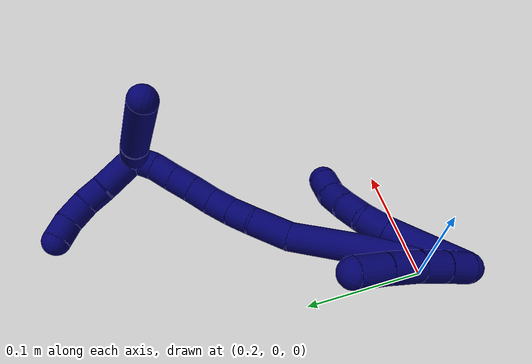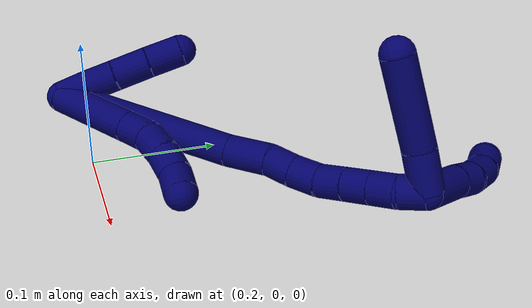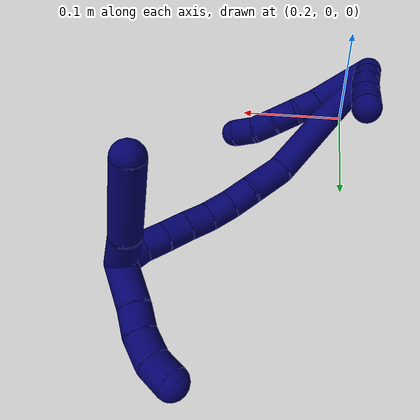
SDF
<sdf version="1.7">
 <world name="default">
  <model name="7">
   <static>0</static>
   <link name="7">
    <collision name="collision-cylinder-e_1_2_8">
     <pose>0.018057 0.007143 0.027216 -0.256673 0.570535 -0.075653</pose>
     <geometry><cylinder><radius>0.0125</radius><length>0.066867</length></cylinder></geometry>
     <surface>
      <friction><ode><mu>1.16</mu><mu2>1.16</mu2><slip1>0</slip1><slip2>0</slip2></ode></friction>
      <contact><ode><kp>1e+06</kp><kd>1</kd><max_vel>0</max_vel><min_depth>0.001</min_depth></ode></contact>
     </surface>
    </collision>
    <visual name="visual-cylinder-e_1_2_8">
     <pose>0.018057 0.007143 0.027216 -0.256673 0.570535 -0.075653</pose>
     <geometry><cylinder><radius>0.0125</radius><length>0.066867</length></cylinder></geometry>
     <material><ambient>0.003922 0 0.403922 1</ambient></material>
    </visual>
    <collision name="collision-cylinder-e_2_8_9">
     <pose>0.042424 0.015677 0.063169 -0.157828 0.61958 -0.050614</pose>
     <geometry><cylinder><radius>0.0125</radius><length>0.021734</length></cylinder></geometry>
     <surface>
      <friction><ode><mu>1.16</mu><mu2>1.16</mu2><slip1>0</slip1><slip2>0</slip2></ode></friction>
      <contact><ode><kp>1e+06</kp><kd>1</kd><max_vel>0</max_vel><min_depth>0.001</min_depth></ode></contact>
     </surface>
    </collision>
    <visual name="visual-cylinder-e_2_8_9">
     <pose>0.042424 0.015677 0.063169 -0.157828 0.61958 -0.050614</pose>
     <geometry><cylinder><radius>0.0125</radius><length>0.021734</length></cylinder></geometry>
     <material><ambient>0.003922 0 0.403922 1</ambient></material>
    </visual>
    <collision name="collision-cylinder-e_3_9_10">
     <pose>0.057224 0.019256 0.077908 -0.349737 0.925735 -0.175874</pose>
     <geometry><cylinder><radius>0.0125</radius><length>0.02125</length></cylinder></geometry>
     <surface>
      <friction><ode><mu>1.16</mu><mu2>1.16</mu2><slip1>0</slip1><slip2>0</slip2></ode></friction>
      <contact><ode><kp>1e+06</kp><kd>1</kd><max_vel>0</max_vel><min_depth>0.001</min_depth></ode></contact>
     </surface>
    </collision>
    <visual name="visual-cylinder-e_3_9_10">
     <pose>0.057224 0.019256 0.077908 -0.349737 0.925735 -0.175874</pose>
     <geometry><cylinder><radius>0.0125</radius><length>0.02125</length></cylinder></geometry>
     <material><ambient>0.003922 0 0.403922 1</ambient></material>
    </visual>
    <collision name="collision-cylinder-e_4_10_11">
     <pose>0.074486 0.023687 0.08821 -0.480407 1.06569 -0.286911</pose>
     <geometry><cylinder><radius>0.0125</radius><length>0.020047</length></cylinder></geometry>
     <surface>
      <friction><ode><mu>1.16</mu><mu2>1.16</mu2><slip1>0</slip1><slip2>0</slip2></ode></friction>
      <contact><ode><kp>1e+06</kp><kd>1</kd><max_vel>0</max_vel><min_depth>0.001</min_depth></ode></contact>
     </surface>
    </collision>
    <visual name="visual-cylinder-e_4_10_11">
     <pose>0.074486 0.023687 0.08821 -0.480407 1.06569 -0.286911</pose>
     <geometry><cylinder><radius>0.0125</radius><length>0.020047</length></cylinder></geometry>
     <material><ambient>0.003922 0 0.403922 1</ambient></material>
    </visual>
    <collision name="collision-cylinder-e_5_11_6">
     <pose>0.092842 0.025968 0.095538 -0.013238 1.26492 -0.009702</pose>
     <geometry><cylinder><radius>0.0125</radius><length>0.020103</length></cylinder></geometry>
     <surface>
      <friction><ode><mu>1.16</mu><mu2>1.16</mu2><slip1>0</slip1><slip2>0</slip2></ode></friction>
      <contact><ode><kp>1e+06</kp><kd>1</kd><max_vel>0</max_vel><min_depth>0.001</min_depth></ode></contact>
     </surface>
    </collision>
    <visual name="visual-cylinder-e_5_11_6">
     <pose>0.092842 0.025968 0.095538 -0.013238 1.26492 -0.009702</pose>
     <geometry><cylinder><radius>0.0125</radius><length>0.020103</length></cylinder></geometry>
     <material><ambient>0.003922 0 0.403922 1</ambient></material>
    </visual>
    <collision name="collision-cylinder-e_1_2_12">
     <pose>-0.003166 0.000608 0.010644 -0.057105 -0.288656 0.008302</pose>
     <geometry><cylinder><radius>0.0125</radius><length>0.022243</length></cylinder></geometry>
     <surface>
      <friction><ode><mu>1.16</mu><mu2>1.16</mu2><slip1>0</slip1><slip2>0</slip2></ode></friction>
      <contact><ode><kp>1e+06</kp><kd>1</kd><max_vel>0</max_vel><min_depth>0.001</min_depth></ode></contact>
     </surface>
    </collision>
    <visual name="visual-cylinder-e_1_2_12">
     <pose>-0.003166 0.000608 0.010644 -0.057105 -0.288656 0.008302</pose>
     <geometry><cylinder><radius>0.0125</radius><length>0.022243</length></cylinder></geometry>
     <material><ambient>0.003922 0 0.403922 1</ambient></material>
    </visual>
    <collision name="collision-cylinder-e_2_12_13">
     <pose>-0.009444 0.002336 0.032104 -0.10313 -0.278787 0.014482</pose>
     <geometry><cylinder><radius>0.0125</radius><length>0.02262</length></cylinder></geometry>
     <surface>
      <friction><ode><mu>1.16</mu><mu2>1.16</mu2><slip1>0</slip1><slip2>0</slip2></ode></friction>
      <contact><ode><kp>1e+06</kp><kd>1</kd><max_vel>0</max_vel><min_depth>0.001</min_depth></ode></contact>
     </surface>
    </collision>
    <visual name="visual-cylinder-e_2_12_13">
     <pose>-0.009444 0.002336 0.032104 -0.10313 -0.278787 0.014482</pose>
     <geometry><cylinder><radius>0.0125</radius><length>0.02262</length></cylinder></geometry>
     <material><ambient>0.003922 0 0.403922 1</ambient></material>
    </visual>
    <collision name="collision-cylinder-e_3_13_14">
     <pose>-0.017164 0.005356 0.056018 -0.144099 -0.334963 0.024403</pose>
     <geometry><cylinder><radius>0.0125</radius><length>0.028028</length></cylinder></geometry>
     <surface>
      <friction><ode><mu>1.16</mu><mu2>1.16</mu2><slip1>0</slip1><slip2>0</slip2></ode></friction>
      <contact><ode><kp>1e+06</kp><kd>1</kd><max_vel>0</max_vel><min_depth>0.001</min_depth></ode></contact>
     </surface>
    </collision>
    <visual name="visual-cylinder-e_3_13_14">
     <pose>-0.017164 0.005356 0.056018 -0.144099 -0.334963 0.024403</pose>
     <geometry><cylinder><radius>0.0125</radius><length>0.028028</length></cylinder></geometry>
     <material><ambient>0.003922 0 0.403922 1</ambient></material>
    </visual>
    <collision name="collision-cylinder-e_4_14_5">
     <pose>-0.0265 0.009702 0.08158 -0.193659 -0.356414 0.034987</pose>
     <geometry><cylinder><radius>0.0125</radius><length>0.027108</length></cylinder></geometry>
     <surface>
      <friction><ode><mu>1.16</mu><mu2>1.16</mu2><slip1>0</slip1><slip2>0</slip2></ode></friction>
      <contact><ode><kp>1e+06</kp><kd>1</kd><max_vel>0</max_vel><min_depth>0.001</min_depth></ode></contact>
     </surface>
    </collision>
    <visual name="visual-cylinder-e_4_14_5">
     <pose>-0.0265 0.009702 0.08158 -0.193659 -0.356414 0.034987</pose>
     <geometry><cylinder><radius>0.0125</radius><length>0.027108</length></cylinder></geometry>
     <material><ambient>0.003922 0 0.403922 1</ambient></material>
    </visual>
    <collision name="collision-cylinder-e_1_2_15">
     <pose>0.023263 0.027799 0.060343 -0.4317 0.3368 -0.07452</pose>
     <geometry><cylinder><radius>0.0125</radius><length>0.140786</length></cylinder></geometry>
     <surface>
      <friction><ode><mu>1.16</mu><mu2>1.16</mu2><slip1>0</slip1><slip2>0</slip2></ode></friction>
      <contact><ode><kp>1e+06</kp><kd>1</kd><max_vel>0</max_vel><min_depth>0.001</min_depth></ode></contact>
     </surface>
    </collision>
    <visual name="visual-cylinder-e_1_2_15">
     <pose>0.023263 0.027799 0.060343 -0.4317 0.3368 -0.07452</pose>
     <geometry><cylinder><radius>0.0125</radius><length>0.140786</length></cylinder></geometry>
     <material><ambient>0.003922 0 0.403922 1</ambient></material>
    </visual>
    <collision name="collision-cylinder-e_2_15_16">
     <pose>0.053277 0.058494 0.136467 -0.181505 0.398309 -0.03673</pose>
     <geometry><cylinder><radius>0.0125</radius><length>0.034817</length></cylinder></geometry>
     <surface>
      <friction><ode><mu>1.16</mu><mu2>1.16</mu2><slip1>0</slip1><slip2>0</slip2></ode></friction>
      <contact><ode><kp>1e+06</kp><kd>1</kd><max_vel>0</max_vel><min_depth>0.001</min_depth></ode></contact>
     </surface>
    </collision>
    <visual name="visual-cylinder-e_2_15_16">
     <pose>0.053277 0.058494 0.136467 -0.181505 0.398309 -0.03673</pose>
     <geometry><cylinder><radius>0.0125</radius><length>0.034817</length></cylinder></geometry>
     <material><ambient>0.003922 0 0.403922 1</ambient></material>
    </visual>
    <collision name="collision-cylinder-e_3_16_17">
     <pose>0.065739 0.064131 0.160728 -0.312676 0.569854 -0.09227</pose>
     <geometry><cylinder><radius>0.0125</radius><length>0.021165</length></cylinder></geometry>
     <surface>
      <friction><ode><mu>1.16</mu><mu2>1.16</mu2><slip1>0</slip1><slip2>0</slip2></ode></friction>
      <contact><ode><kp>1e+06</kp><kd>1</kd><max_vel>0</max_vel><min_depth>0.001</min_depth></ode></contact>
     </surface>
    </collision>
    <visual name="visual-cylinder-e_3_16_17">
     <pose>0.065739 0.064131 0.160728 -0.312676 0.569854 -0.09227</pose>
     <geometry><cylinder><radius>0.0125</radius><length>0.021165</length></cylinder></geometry>
     <material><ambient>0.003922 0 0.403922 1</ambient></material>
    </visual>
    <collision name="collision-cylinder-e_4_17_18">
     <pose>0.077097 0.068532 0.178499 -0.176784 0.539241 -0.048972</pose>
     <geometry><cylinder><radius>0.0125</radius><length>0.022004</length></cylinder></geometry>
     <surface>
      <friction><ode><mu>1.16</mu><mu2>1.16</mu2><slip1>0</slip1><slip2>0</slip2></ode></friction>
      <contact><ode><kp>1e+06</kp><kd>1</kd><max_vel>0</max_vel><min_depth>0.001</min_depth></ode></contact>
     </surface>
    </collision>
    <visual name="visual-cylinder-e_4_17_18">
     <pose>0.077097 0.068532 0.178499 -0.176784 0.539241 -0.048972</pose>
     <geometry><cylinder><radius>0.0125</radius><length>0.022004</length></cylinder></geometry>
     <material><ambient>0.003922 0 0.403922 1</ambient></material>
    </visual>
    <collision name="collision-cylinder-e_5_18_19">
     <pose>0.087021 0.069983 0.197431 0.021669 0.417357 0.004589</pose>
     <geometry><cylinder><radius>0.0125</radius><length>0.02109</length></cylinder></geometry>
     <surface>
      <friction><ode><mu>1.16</mu><mu2>1.16</mu2><slip1>0</slip1><slip2>0</slip2></ode></friction>
      <contact><ode><kp>1e+06</kp><kd>1</kd><max_vel>0</max_vel><min_depth>0.001</min_depth></ode></contact>
     </surface>
    </collision>
    <visual name="visual-cylinder-e_5_18_19">
     <pose>0.087021 0.069983 0.197431 0.021669 0.417357 0.004589</pose>
     <geometry><cylinder><radius>0.0125</radius><length>0.02109</length></cylinder></geometry>
     <material><ambient>0.003922 0 0.403922 1</ambient></material>
    </visual>
    <collision name="collision-cylinder-e_6_19_20">
     <pose>0.095231 0.069917 0.216318 -0.015388 0.402261 -0.003137</pose>
     <geometry><cylinder><radius>0.0125</radius><length>0.020107</length></cylinder></geometry>
     <surface>
      <friction><ode><mu>1.16</mu><mu2>1.16</mu2><slip1>0</slip1><slip2>0</slip2></ode></friction>
      <contact><ode><kp>1e+06</kp><kd>1</kd><max_vel>0</max_vel><min_depth>0.001</min_depth></ode></contact>
     </surface>
    </collision>
    <visual name="visual-cylinder-e_6_19_20">
     <pose>0.095231 0.069917 0.216318 -0.015388 0.402261 -0.003137</pose>
     <geometry><cylinder><radius>0.0125</radius><length>0.020107</length></cylinder></geometry>
     <material><ambient>0.003922 0 0.403922 1</ambient></material>
    </visual>
    <collision name="collision-cylinder-e_7_20_21">
     <pose>0.103256 0.069946 0.234706 0.012343 0.420692 0.002635</pose>
     <geometry><cylinder><radius>0.0125</radius><length>0.020023</length></cylinder></geometry>
     <surface>
      <friction><ode><mu>1.16</mu><mu2>1.16</mu2><slip1>0</slip1><slip2>0</slip2></ode></friction>
      <contact><ode><kp>1e+06</kp><kd>1</kd><max_vel>0</max_vel><min_depth>0.001</min_depth></ode></contact>
     </surface>
    </collision>
    <visual name="visual-cylinder-e_7_20_21">
     <pose>0.103256 0.069946 0.234706 0.012343 0.420692 0.002635</pose>
     <geometry><cylinder><radius>0.0125</radius><length>0.020023</length></cylinder></geometry>
     <material><ambient>0.003922 0 0.403922 1</ambient></material>
    </visual>
    <collision name="collision-cylinder-e_8_21_1">
     <pose>0.109414 0.07088 0.253575 -0.107094 0.208425 -0.011212</pose>
     <geometry><cylinder><radius>0.0125</radius><length>0.020009</length></cylinder></geometry>
     <surface>
      <friction><ode><mu>1.16</mu><mu2>1.16</mu2><slip1>0</slip1><slip2>0</slip2></ode></friction>
      <contact><ode><kp>1e+06</kp><kd>1</kd><max_vel>0</max_vel><min_depth>0.001</min_depth></ode></contact>
     </surface>
    </collision>
    <visual name="visual-cylinder-e_8_21_1">
     <pose>0.109414 0.07088 0.253575 -0.107094 0.208425 -0.011212</pose>
     <geometry><cylinder><radius>0.0125</radius><length>0.020009</length></cylinder></geometry>
     <material><ambient>0.003922 0 0.403922 1</ambient></material>
    </visual>
    <collision name="collision-cylinder-e_1_1_22">
     <pose>0.102337 0.059192 0.264362 1.48814 -0.621286 -0.574718</pose>
     <geometry><cylinder><radius>0.0125</radius><length>0.031429</length></cylinder></geometry>
     <surface>
      <friction><ode><mu>1.16</mu><mu2>1.16</mu2><slip1>0</slip1><slip2>0</slip2></ode></friction>
      <contact><ode><kp>1e+06</kp><kd>1</kd><max_vel>0</max_vel><min_depth>0.001</min_depth></ode></contact>
     </surface>
    </collision>
    <visual name="visual-cylinder-e_1_1_22">
     <pose>0.102337 0.059192 0.264362 1.48814 -0.621286 -0.574718</pose>
     <geometry><cylinder><radius>0.0125</radius><length>0.031429</length></cylinder></geometry>
     <material><ambient>0.003922 0 0.403922 1</ambient></material>
    </visual>
    <collision name="collision-cylinder-e_2_22_4">
     <pose>0.07708 0.016223 0.266778 1.52582 -0.489154 -0.46843</pose>
     <geometry><cylinder><radius>0.0125</radius><length>0.068571</length></cylinder></geometry>
     <surface>
      <friction><ode><mu>1.16</mu><mu2>1.16</mu2><slip1>0</slip1><slip2>0</slip2></ode></friction>
      <contact><ode><kp>1e+06</kp><kd>1</kd><max_vel>0</max_vel><min_depth>0.001</min_depth></ode></contact>
     </surface>
    </collision>
    <visual name="visual-cylinder-e_2_22_4">
     <pose>0.07708 0.016223 0.266778 1.52582 -0.489154 -0.46843</pose>
     <geometry><cylinder><radius>0.0125</radius><length>0.068571</length></cylinder></geometry>
     <material><ambient>0.003922 0 0.403922 1</ambient></material>
    </visual>
    <collision name="collision-cylinder-e_1_1_23">
     <pose>0.100439 0.084205 0.272215 -0.943186 -0.629394 0.329006</pose>
     <geometry><cylinder><radius>0.0125</radius><length>0.03753</length></cylinder></geometry>
     <surface>
      <friction><ode><mu>1.16</mu><mu2>1.16</mu2><slip1>0</slip1><slip2>0</slip2></ode></friction>
      <contact><ode><kp>1e+06</kp><kd>1</kd><max_vel>0</max_vel><min_depth>0.001</min_depth></ode></contact>
     </surface>
    </collision>
    <visual name="visual-cylinder-e_1_1_23">
     <pose>0.100439 0.084205 0.272215 -0.943186 -0.629394 0.329006</pose>
     <geometry><cylinder><radius>0.0125</radius><length>0.03753</length></cylinder></geometry>
     <material><ambient>0.003922 0 0.403922 1</ambient></material>
    </visual>
    <collision name="collision-cylinder-e_2_23_24">
     <pose>0.084287 0.103289 0.286403 -0.91089 -0.535061 0.266907</pose>
     <geometry><cylinder><radius>0.0125</radius><length>0.020027</length></cylinder></geometry>
     <surface>
      <friction><ode><mu>1.16</mu><mu2>1.16</mu2><slip1>0</slip1><slip2>0</slip2></ode></friction>
      <contact><ode><kp>1e+06</kp><kd>1</kd><max_vel>0</max_vel><min_depth>0.001</min_depth></ode></contact>
     </surface>
    </collision>
    <visual name="visual-cylinder-e_2_23_24">
     <pose>0.084287 0.103289 0.286403 -0.91089 -0.535061 0.266907</pose>
     <geometry><cylinder><radius>0.0125</radius><length>0.020027</length></cylinder></geometry>
     <material><ambient>0.003922 0 0.403922 1</ambient></material>
    </visual>
    <collision name="collision-cylinder-e_3_24_25">
     <pose>0.071577 0.116912 0.296062 -1.00001 -0.753658 0.42584</pose>
     <geometry><cylinder><radius>0.0125</radius><length>0.022224</length></cylinder></geometry>
     <surface>
      <friction><ode><mu>1.16</mu><mu2>1.16</mu2><slip1>0</slip1><slip2>0</slip2></ode></friction>
      <contact><ode><kp>1e+06</kp><kd>1</kd><max_vel>0</max_vel><min_depth>0.001</min_depth></ode></contact>
     </surface>
    </collision>
    <visual name="visual-cylinder-e_3_24_25">
     <pose>0.071577 0.116912 0.296062 -1.00001 -0.753658 0.42584</pose>
     <geometry><cylinder><radius>0.0125</radius><length>0.022224</length></cylinder></geometry>
     <material><ambient>0.003922 0 0.403922 1</ambient></material>
    </visual>
    <collision name="collision-cylinder-e_4_25_3">
     <pose>0.055211 0.128391 0.302369 -1.17832 -1.04843 0.737482</pose>
     <geometry><cylinder><radius>0.0125</radius><length>0.020219</length></cylinder></geometry>
     <surface>
      <friction><ode><mu>1.16</mu><mu2>1.16</mu2><slip1>0</slip1><slip2>0</slip2></ode></friction>
      <contact><ode><kp>1e+06</kp><kd>1</kd><max_vel>0</max_vel><min_depth>0.001</min_depth></ode></contact>
     </surface>
    </collision>
    <visual name="visual-cylinder-e_4_25_3">
     <pose>0.055211 0.128391 0.302369 -1.17832 -1.04843 0.737482</pose>
     <geometry><cylinder><radius>0.0125</radius><length>0.020219</length></cylinder></geometry>
     <material><ambient>0.003922 0 0.403922 1</ambient></material>
    </visual>
    <collision name="collision-sphere-3">
     <pose>0.04645 0.133052 0.304298 0 -0 0</pose>
     <geometry><sphere><radius>0.0125</radius></sphere></geometry>
     <surface>
      <friction><ode><mu>1.16</mu><mu2>1.16</mu2><slip1>0</slip1><slip2>0</slip2></ode></friction>
      <contact><ode><kp>1e+06</kp><kd>1</kd><max_vel>0</max_vel><min_depth>0.001</min_depth></ode></contact>
     </surface>
    </collision>
    <visual name="visual-sphere-3">
     <pose>0.04645 0.133052 0.304298 0 -0 0</pose>
     <geometry><sphere><radius>0.0125</radius></sphere></geometry>
     <material><ambient>0.003922 0 0.403922 1</ambient></material>
    </visual>
    <collision name="collision-sphere-25">
     <pose>0.063973 0.123731 0.30044 0 -0 0</pose>
     <geometry><sphere><radius>0.0125</radius></sphere></geometry>
     <surface>
      <friction><ode><mu>1.16</mu><mu2>1.16</mu2><slip1>0</slip1><slip2>0</slip2></ode></friction>
      <contact><ode><kp>1e+06</kp><kd>1</kd><max_vel>0</max_vel><min_depth>0.001</min_depth></ode></contact>
     </surface>
    </collision>
    <visual name="visual-sphere-25">
     <pose>0.063973 0.123731 0.30044 0 -0 0</pose>
     <geometry><sphere><radius>0.0125</radius></sphere></geometry>
     <material><ambient>0.003922 0 0.403922 1</ambient></material>
    </visual>
    <collision name="collision-sphere-24">
     <pose>0.079181 0.110094 0.291684 0 -0 0</pose>
     <geometry><sphere><radius>0.0125</radius></sphere></geometry>
     <surface>
      <friction><ode><mu>1.16</mu><mu2>1.16</mu2><slip1>0</slip1><slip2>0</slip2></ode></friction>
      <contact><ode><kp>1e+06</kp><kd>1</kd><max_vel>0</max_vel><min_depth>0.001</min_depth></ode></contact>
     </surface>
    </collision>
    <visual name="visual-sphere-24">
     <pose>0.079181 0.110094 0.291684 0 -0 0</pose>
     <geometry><sphere><radius>0.0125</radius></sphere></geometry>
     <material><ambient>0.003922 0 0.403922 1</ambient></material>
    </visual>
    <collision name="collision-sphere-23">
     <pose>0.089393 0.096483 0.281122 0 -0 0</pose>
     <geometry><sphere><radius>0.0125</radius></sphere></geometry>
     <surface>
      <friction><ode><mu>1.16</mu><mu2>1.16</mu2><slip1>0</slip1><slip2>0</slip2></ode></friction>
      <contact><ode><kp>1e+06</kp><kd>1</kd><max_vel>0</max_vel><min_depth>0.001</min_depth></ode></contact>
     </surface>
    </collision>
    <visual name="visual-sphere-23">
     <pose>0.089393 0.096483 0.281122 0 -0 0</pose>
     <geometry><sphere><radius>0.0125</radius></sphere></geometry>
     <material><ambient>0.003922 0 0.403922 1</ambient></material>
    </visual>
    <collision name="collision-sphere-4">
     <pose>0.06097 -0.014011 0.268139 0 -0 0</pose>
     <geometry><sphere><radius>0.0125</radius></sphere></geometry>
     <surface>
      <friction><ode><mu>1.16</mu><mu2>1.16</mu2><slip1>0</slip1><slip2>0</slip2></ode></friction>
      <contact><ode><kp>1e+06</kp><kd>1</kd><max_vel>0</max_vel><min_depth>0.001</min_depth></ode></contact>
     </surface>
    </collision>
    <visual name="visual-sphere-4">
     <pose>0.06097 -0.014011 0.268139 0 -0 0</pose>
     <geometry><sphere><radius>0.0125</radius></sphere></geometry>
     <material><ambient>0.003922 0 0.403922 1</ambient></material>
    </visual>
    <collision name="collision-sphere-22">
     <pose>0.09319 0.046457 0.265417 0 -0 0</pose>
     <geometry><sphere><radius>0.0125</radius></sphere></geometry>
     <surface>
      <friction><ode><mu>1.16</mu><mu2>1.16</mu2><slip1>0</slip1><slip2>0</slip2></ode></friction>
      <contact><ode><kp>1e+06</kp><kd>1</kd><max_vel>0</max_vel><min_depth>0.001</min_depth></ode></contact>
     </surface>
    </collision>
    <visual name="visual-sphere-22">
     <pose>0.09319 0.046457 0.265417 0 -0 0</pose>
     <geometry><sphere><radius>0.0125</radius></sphere></geometry>
     <material><ambient>0.003922 0 0.403922 1</ambient></material>
    </visual>
    <collision name="collision-sphere-1">
     <pose>0.111485 0.071926 0.263307 0 -0 0</pose>
     <geometry><sphere><radius>0.0125</radius></sphere></geometry>
     <surface>
      <friction><ode><mu>1.16</mu><mu2>1.16</mu2><slip1>0</slip1><slip2>0</slip2></ode></friction>
      <contact><ode><kp>1e+06</kp><kd>1</kd><max_vel>0</max_vel><min_depth>0.001</min_depth></ode></contact>
     </surface>
    </collision>
    <visual name="visual-sphere-1">
     <pose>0.111485 0.071926 0.263307 0 -0 0</pose>
     <geometry><sphere><radius>0.0125</radius></sphere></geometry>
     <material><ambient>0.003922 0 0.403922 1</ambient></material>
    </visual>
    <collision name="collision-sphere-21">
     <pose>0.107344 0.069834 0.243844 0 -0 0</pose>
     <geometry><sphere><radius>0.0125</radius></sphere></geometry>
     <surface>
      <friction><ode><mu>1.16</mu><mu2>1.16</mu2><slip1>0</slip1><slip2>0</slip2></ode></friction>
      <contact><ode><kp>1e+06</kp><kd>1</kd><max_vel>0</max_vel><min_depth>0.001</min_depth></ode></contact>
     </surface>
    </collision>
    <visual name="visual-sphere-21">
     <pose>0.107344 0.069834 0.243844 0 -0 0</pose>
     <geometry><sphere><radius>0.0125</radius></sphere></geometry>
     <material><ambient>0.003922 0 0.403922 1</ambient></material>
    </visual>
    <collision name="collision-sphere-6">
     <pose>0.102427 0.026008 0.098565 0 -0 0</pose>
     <geometry><sphere><radius>0.0125</radius></sphere></geometry>
     <surface>
      <friction><ode><mu>1.16</mu><mu2>1.16</mu2><slip1>0</slip1><slip2>0</slip2></ode></friction>
      <contact><ode><kp>1e+06</kp><kd>1</kd><max_vel>0</max_vel><min_depth>0.001</min_depth></ode></contact>
     </surface>
    </collision>
    <visual name="visual-sphere-6">
     <pose>0.102427 0.026008 0.098565 0 -0 0</pose>
     <geometry><sphere><radius>0.0125</radius></sphere></geometry>
     <material><ambient>0.003922 0 0.403922 1</ambient></material>
    </visual>
    <collision name="collision-sphere-11">
     <pose>0.083258 0.025928 0.092512 0 -0 0</pose>
     <geometry><sphere><radius>0.0125</radius></sphere></geometry>
     <surface>
      <friction><ode><mu>1.16</mu><mu2>1.16</mu2><slip1>0</slip1><slip2>0</slip2></ode></friction>
      <contact><ode><kp>1e+06</kp><kd>1</kd><max_vel>0</max_vel><min_depth>0.001</min_depth></ode></contact>
     </surface>
    </collision>
    <visual name="visual-sphere-11">
     <pose>0.083258 0.025928 0.092512 0 -0 0</pose>
     <geometry><sphere><radius>0.0125</radius></sphere></geometry>
     <material><ambient>0.003922 0 0.403922 1</ambient></material>
    </visual>
    <collision name="collision-sphere-10">
     <pose>0.065714 0.021445 0.083909 0 -0 0</pose>
     <geometry><sphere><radius>0.0125</radius></sphere></geometry>
     <surface>
      <friction><ode><mu>1.16</mu><mu2>1.16</mu2><slip1>0</slip1><slip2>0</slip2></ode></friction>
      <contact><ode><kp>1e+06</kp><kd>1</kd><max_vel>0</max_vel><min_depth>0.001</min_depth></ode></contact>
     </surface>
    </collision>
    <visual name="visual-sphere-10">
     <pose>0.065714 0.021445 0.083909 0 -0 0</pose>
     <geometry><sphere><radius>0.0125</radius></sphere></geometry>
     <material><ambient>0.003922 0 0.403922 1</ambient></material>
    </visual>
    <collision name="collision-sphere-9">
     <pose>0.048734 0.017067 0.071906 0 -0 0</pose>
     <geometry><sphere><radius>0.0125</radius></sphere></geometry>
     <surface>
      <friction><ode><mu>1.16</mu><mu2>1.16</mu2><slip1>0</slip1><slip2>0</slip2></ode></friction>
      <contact><ode><kp>1e+06</kp><kd>1</kd><max_vel>0</max_vel><min_depth>0.001</min_depth></ode></contact>
     </surface>
    </collision>
    <visual name="visual-sphere-9">
     <pose>0.048734 0.017067 0.071906 0 -0 0</pose>
     <geometry><sphere><radius>0.0125</radius></sphere></geometry>
     <material><ambient>0.003922 0 0.403922 1</ambient></material>
    </visual>
    <collision name="collision-sphere-2">
     <geometry><sphere><radius>0.0125</radius></sphere></geometry>
     <surface>
      <friction><ode><mu>1.16</mu><mu2>1.16</mu2><slip1>0</slip1><slip2>0</slip2></ode></friction>
      <contact><ode><kp>1e+06</kp><kd>1</kd><max_vel>0</max_vel><min_depth>0.001</min_depth></ode></contact>
     </surface>
    </collision>
    <visual name="visual-sphere-2">
     <geometry><sphere><radius>0.0125</radius></sphere></geometry>
     <material><ambient>0.003922 0 0.403922 1</ambient></material>
    </visual>
    <collision name="collision-sphere-19">
     <pose>0.091295 0.069775 0.207069 0 -0 0</pose>
     <geometry><sphere><radius>0.0125</radius></sphere></geometry>
     <surface>
      <friction><ode><mu>1.16</mu><mu2>1.16</mu2><slip1>0</slip1><slip2>0</slip2></ode></friction>
      <contact><ode><kp>1e+06</kp><kd>1</kd><max_vel>0</max_vel><min_depth>0.001</min_depth></ode></contact>
     </surface>
    </collision>
    <visual name="visual-sphere-19">
     <pose>0.091295 0.069775 0.207069 0 -0 0</pose>
     <geometry><sphere><radius>0.0125</radius></sphere></geometry>
     <material><ambient>0.003922 0 0.403922 1</ambient></material>
    </visual>
    <collision name="collision-sphere-8">
     <pose>0.036113 0.014286 0.054432 0 -0 0</pose>
     <geometry><sphere><radius>0.0125</radius></sphere></geometry>
     <surface>
      <friction><ode><mu>1.16</mu><mu2>1.16</mu2><slip1>0</slip1><slip2>0</slip2></ode></friction>
      <contact><ode><kp>1e+06</kp><kd>1</kd><max_vel>0</max_vel><min_depth>0.001</min_depth></ode></contact>
     </surface>
    </collision>
    <visual name="visual-sphere-8">
     <pose>0.036113 0.014286 0.054432 0 -0 0</pose>
     <geometry><sphere><radius>0.0125</radius></sphere></geometry>
     <material><ambient>0.003922 0 0.403922 1</ambient></material>
    </visual>
    <collision name="collision-sphere-12">
     <pose>-0.006332 0.001217 0.021288 0 -0 0</pose>
     <geometry><sphere><radius>0.0125</radius></sphere></geometry>
     <surface>
      <friction><ode><mu>1.16</mu><mu2>1.16</mu2><slip1>0</slip1><slip2>0</slip2></ode></friction>
      <contact><ode><kp>1e+06</kp><kd>1</kd><max_vel>0</max_vel><min_depth>0.001</min_depth></ode></contact>
     </surface>
    </collision>
    <visual name="visual-sphere-12">
     <pose>-0.006332 0.001217 0.021288 0 -0 0</pose>
     <geometry><sphere><radius>0.0125</radius></sphere></geometry>
     <material><ambient>0.003922 0 0.403922 1</ambient></material>
    </visual>
    <collision name="collision-sphere-13">
     <pose>-0.012557 0.003456 0.04292 0 -0 0</pose>
     <geometry><sphere><radius>0.0125</radius></sphere></geometry>
     <surface>
      <friction><ode><mu>1.16</mu><mu2>1.16</mu2><slip1>0</slip1><slip2>0</slip2></ode></friction>
      <contact><ode><kp>1e+06</kp><kd>1</kd><max_vel>0</max_vel><min_depth>0.001</min_depth></ode></contact>
     </surface>
    </collision>
    <visual name="visual-sphere-13">
     <pose>-0.012557 0.003456 0.04292 0 -0 0</pose>
     <geometry><sphere><radius>0.0125</radius></sphere></geometry>
     <material><ambient>0.003922 0 0.403922 1</ambient></material>
    </visual>
    <collision name="collision-sphere-14">
     <pose>-0.021771 0.007257 0.069116 0 -0 0</pose>
     <geometry><sphere><radius>0.0125</radius></sphere></geometry>
     <surface>
      <friction><ode><mu>1.16</mu><mu2>1.16</mu2><slip1>0</slip1><slip2>0</slip2></ode></friction>
      <contact><ode><kp>1e+06</kp><kd>1</kd><max_vel>0</max_vel><min_depth>0.001</min_depth></ode></contact>
     </surface>
    </collision>
    <visual name="visual-sphere-14">
     <pose>-0.021771 0.007257 0.069116 0 -0 0</pose>
     <geometry><sphere><radius>0.0125</radius></sphere></geometry>
     <material><ambient>0.003922 0 0.403922 1</ambient></material>
    </visual>
    <collision name="collision-sphere-5">
     <pose>-0.031229 0.012146 0.094045 0 -0 0</pose>
     <geometry><sphere><radius>0.0125</radius></sphere></geometry>
     <surface>
      <friction><ode><mu>1.16</mu><mu2>1.16</mu2><slip1>0</slip1><slip2>0</slip2></ode></friction>
      <contact><ode><kp>1e+06</kp><kd>1</kd><max_vel>0</max_vel><min_depth>0.001</min_depth></ode></contact>
     </surface>
    </collision>
    <visual name="visual-sphere-5">
     <pose>-0.031229 0.012146 0.094045 0 -0 0</pose>
     <geometry><sphere><radius>0.0125</radius></sphere></geometry>
     <material><ambient>0.003922 0 0.403922 1</ambient></material>
    </visual>
    <collision name="collision-sphere-15">
     <pose>0.046525 0.055597 0.120685 0 -0 0</pose>
     <geometry><sphere><radius>0.0125</radius></sphere></geometry>
     <surface>
      <friction><ode><mu>1.16</mu><mu2>1.16</mu2><slip1>0</slip1><slip2>0</slip2></ode></friction>
      <contact><ode><kp>1e+06</kp><kd>1</kd><max_vel>0</max_vel><min_depth>0.001</min_depth></ode></contact>
     </surface>
    </collision>
    <visual name="visual-sphere-15">
     <pose>0.046525 0.055597 0.120685 0 -0 0</pose>
     <geometry><sphere><radius>0.0125</radius></sphere></geometry>
     <material><ambient>0.003922 0 0.403922 1</ambient></material>
    </visual>
    <collision name="collision-sphere-16">
     <pose>0.060029 0.06139 0.152249 0 -0 0</pose>
     <geometry><sphere><radius>0.0125</radius></sphere></geometry>
     <surface>
      <friction><ode><mu>1.16</mu><mu2>1.16</mu2><slip1>0</slip1><slip2>0</slip2></ode></friction>
      <contact><ode><kp>1e+06</kp><kd>1</kd><max_vel>0</max_vel><min_depth>0.001</min_depth></ode></contact>
     </surface>
    </collision>
    <visual name="visual-sphere-16">
     <pose>0.060029 0.06139 0.152249 0 -0 0</pose>
     <geometry><sphere><radius>0.0125</radius></sphere></geometry>
     <material><ambient>0.003922 0 0.403922 1</ambient></material>
    </visual>
    <collision name="collision-sphere-17">
     <pose>0.071448 0.066872 0.169206 0 -0 0</pose>
     <geometry><sphere><radius>0.0125</radius></sphere></geometry>
     <surface>
      <friction><ode><mu>1.16</mu><mu2>1.16</mu2><slip1>0</slip1><slip2>0</slip2></ode></friction>
      <contact><ode><kp>1e+06</kp><kd>1</kd><max_vel>0</max_vel><min_depth>0.001</min_depth></ode></contact>
     </surface>
    </collision>
    <visual name="visual-sphere-17">
     <pose>0.071448 0.066872 0.169206 0 -0 0</pose>
     <geometry><sphere><radius>0.0125</radius></sphere></geometry>
     <material><ambient>0.003922 0 0.403922 1</ambient></material>
    </visual>
    <collision name="collision-sphere-18">
     <pose>0.082747 0.070192 0.187793 0 -0 0</pose>
     <geometry><sphere><radius>0.0125</radius></sphere></geometry>
     <surface>
      <friction><ode><mu>1.16</mu><mu2>1.16</mu2><slip1>0</slip1><slip2>0</slip2></ode></friction>
      <contact><ode><kp>1e+06</kp><kd>1</kd><max_vel>0</max_vel><min_depth>0.001</min_depth></ode></contact>
     </surface>
    </collision>
    <visual name="visual-sphere-18">
     <pose>0.082747 0.070192 0.187793 0 -0 0</pose>
     <geometry><sphere><radius>0.0125</radius></sphere></geometry>
     <material><ambient>0.003922 0 0.403922 1</ambient></material>
    </visual>
    <collision name="collision-sphere-20">
     <pose>0.099167 0.070059 0.225568 0 -0 0</pose>
     <geometry><sphere><radius>0.0125</radius></sphere></geometry>
     <surface>
      <friction><ode><mu>1.16</mu><mu2>1.16</mu2><slip1>0</slip1><slip2>0</slip2></ode></friction>
      <contact><ode><kp>1e+06</kp><kd>1</kd><max_vel>0</max_vel><min_depth>0.001</min_depth></ode></contact>
     </surface>
    </collision>
    <visual name="visual-sphere-20">
     <pose>0.099167 0.070059 0.225568 0 -0 0</pose>
     <geometry><sphere><radius>0.0125</radius></sphere></geometry>
     <material><ambient>0.003922 0 0.403922 1</ambient></material>
    </visual>
    <inertial>
     <pose>0.050817 0.040821 0.143189 0 -0 0</pose>
     <mass>0.75</mass>
     <inertia>
      <ixx>0.000281</ixx>
      <ixy>0</ixy>
      <ixz>0</ixz>
      <iyy>0.000268</iyy>
      <iyz>0</iyz>
      <izz>-0.00012</izz>
     </inertia>
    </inertial>
   </link>
   <pose>0.177899 -0.015605 0.050866 -1.22175 0.418426 -0.32074</pose>
  </model>
 </world>
</sdf>
